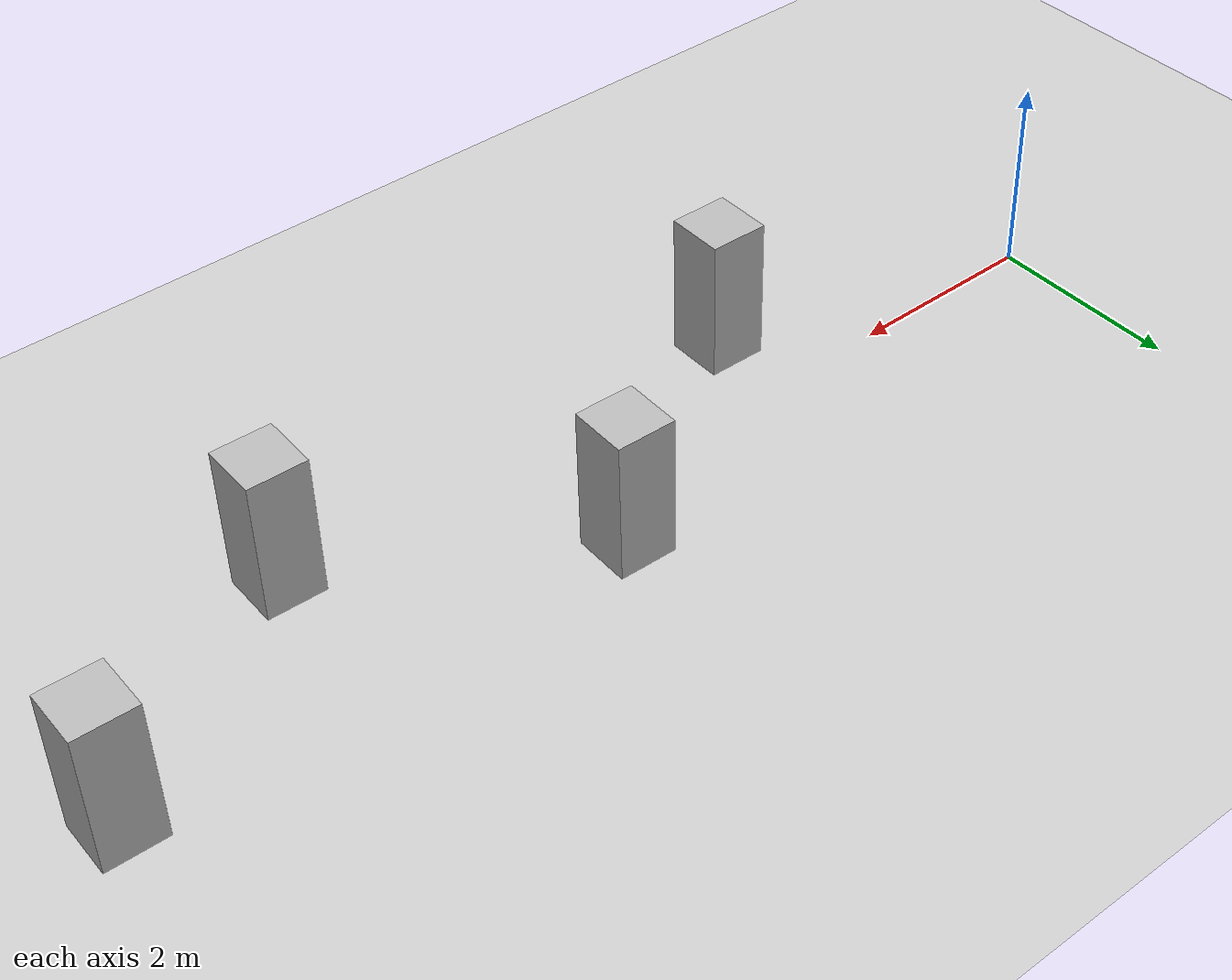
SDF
<?xml version="1.0"?>
<sdf version="1.6">
  <world name="v2-04e3-static-s4723">
    <gravity>0 0 -9.81</gravity>
    <physics name="v2_deterministic" type="ode">
      <max_step_size>0.002</max_step_size>
      <real_time_update_rate>500</real_time_update_rate>
    </physics>
    <include>
      <uri>model://sun</uri>
    </include>
    <include>
      <uri>model://ground_plane</uri>
    </include>
    <model name="pillar-1">
      <static>true</static>
      <pose>3.266128140 -0.836995944 0.750000000 0 0 -0.012788230</pose>
      <link name="link">
        <collision name="collision">
          <geometry>
            <box>
              <size>0.600000 0.600000 1.500000</size>
            </box>
          </geometry>
        </collision>
        <visual name="visual">
          <geometry>
            <box>
              <size>0.600000 0.600000 1.500000</size>
            </box>
          </geometry>
        </visual>
      </link>
    </model>
    <model name="pillar-2">
      <static>true</static>
      <pose>5.715369305 0.760141001 0.750000000 0 0 -0.027514814</pose>
      <link name="link">
        <collision name="collision">
          <geometry>
            <box>
              <size>0.600000 0.600000 1.500000</size>
            </box>
          </geometry>
        </collision>
        <visual name="visual">
          <geometry>
            <box>
              <size>0.600000 0.600000 1.500000</size>
            </box>
          </geometry>
        </visual>
      </link>
    </model>
    <model name="pillar-3">
      <static>true</static>
      <pose>8.330250028 -0.825537859 0.750000000 0 0 -0.026446688</pose>
      <link name="link">
        <collision name="collision">
          <geometry>
            <box>
              <size>0.600000 0.600000 1.500000</size>
            </box>
          </geometry>
        </collision>
        <visual name="visual">
          <geometry>
            <box>
              <size>0.600000 0.600000 1.500000</size>
            </box>
          </geometry>
        </visual>
      </link>
    </model>
    <model name="pillar-4">
      <static>true</static>
      <pose>10.749573850 0.652963515 0.750000000 0 0 -0.026269282</pose>
      <link name="link">
        <collision name="collision">
          <geometry>
            <box>
              <size>0.600000 0.600000 1.500000</size>
            </box>
          </geometry>
        </collision>
        <visual name="visual">
          <geometry>
            <box>
              <size>0.600000 0.600000 1.500000</size>
            </box>
          </geometry>
        </visual>
      </link>
    </model>
  </world>
</sdf>
